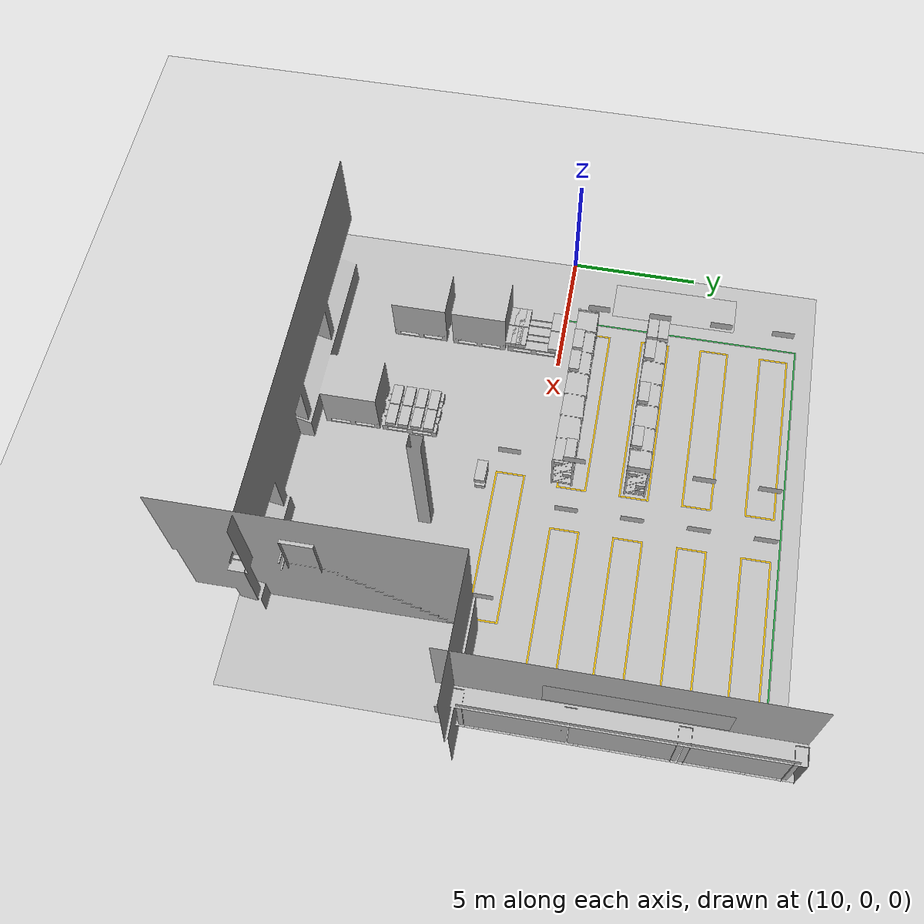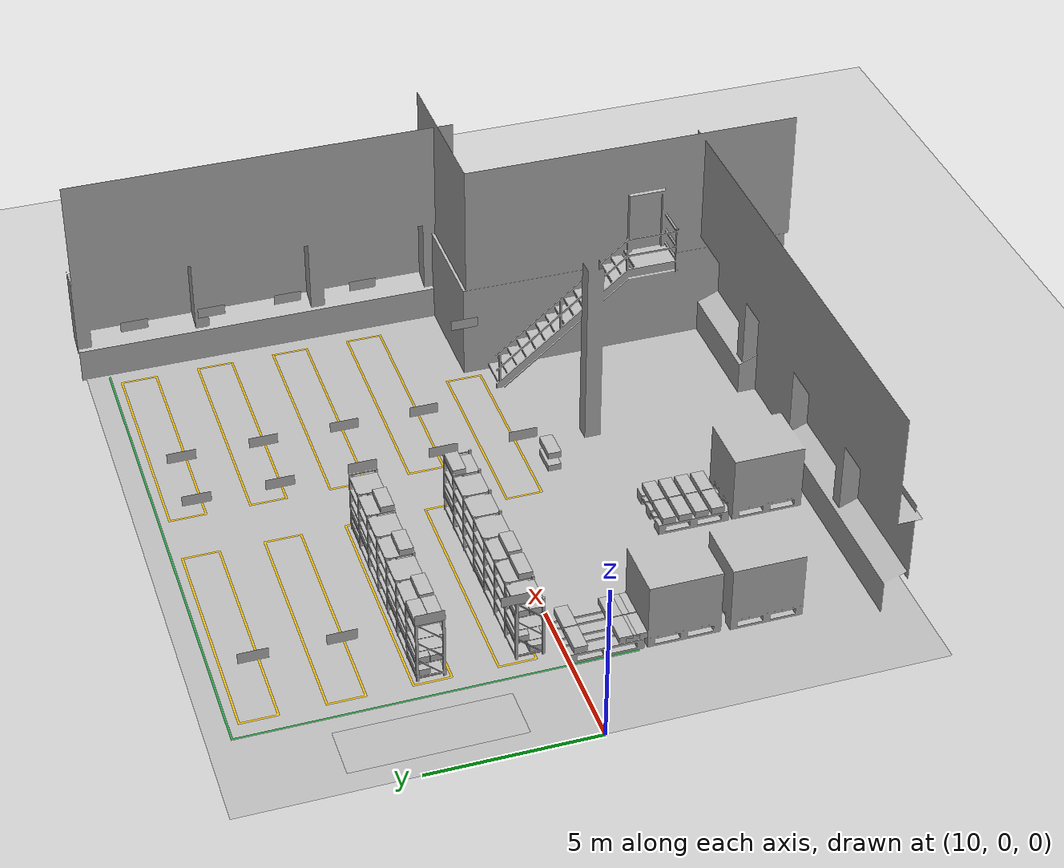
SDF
<sdf version="1.6">
 <world name="default">
  <model name="ground_plane">
   <static>1</static>
   <link name="link">
    <collision name="collision">
     <geometry><plane><normal>0 0 1</normal><size>100 100</size></plane></geometry>
     <surface><friction><ode><mu>100</mu><mu2>50</mu2></ode></friction></surface>
    </collision>
    <visual name="visual">
     <cast_shadows>0</cast_shadows>
     <geometry><plane><normal>0 0 1</normal><size>100 100</size></plane></geometry>
     <material>
      <script><uri>file://media/materials/scripts/gazebo.material</uri><name>Gazebo/Grey</name></script>
     </material>
    </visual>
   </link>
  </model>
  <include>
   <name>zone_B_layout</name>
   <uri>model://zone_b_layout</uri>
   <pose>20.062 0.052292 0 0 0 1.5708</pose>
  </include>
  <model name="box_B_013">
   <pose>20.763 -2.0527 0.652 0 0 1.5708</pose>
   <link name="link">
    <inertial>
     <mass>4.0</mass>
     <inertia><ixx>0.25417</ixx><iyy>0.06667</iyy><izz>0.29417</izz><ixy>0</ixy><ixz>0</ixz><iyz>0</iyz></inertia>
    </inertial>
    <collision name="collision">
     <geometry><box><size>0.4 0.85 0.2</size></box></geometry>
     <surface><friction><ode><mu>1.0</mu><mu2>1.0</mu2></ode></friction></surface>
    </collision>
    <visual name="visual">
     <cast_shadows>0</cast_shadows>
     <geometry><box><size>0.4 0.85 0.2</size></box></geometry>
     <material>
      <script>
       <uri>model://labeled_boxes/materials/scripts</uri>
       <uri>model://labeled_boxes/materials/textures</uri>
       <name>LabeledBox/B-013</name>
      </script>
     </material>
    </visual>
   </link>
  </model>
  <model name="box_B_014">
   <pose>20.763 -2.0527 1.102 0 0 1.5708</pose>
   <link name="link">
    <inertial>
     <mass>4.0</mass>
     <inertia><ixx>0.25417</ixx><iyy>0.06667</iyy><izz>0.29417</izz><ixy>0</ixy><ixz>0</ixz><iyz>0</iyz></inertia>
    </inertial>
    <collision name="collision">
     <geometry><box><size>0.4 0.85 0.2</size></box></geometry>
     <surface><friction><ode><mu>1.0</mu><mu2>1.0</mu2></ode></friction></surface>
    </collision>
    <visual name="visual">
     <cast_shadows>0</cast_shadows>
     <geometry><box><size>0.4 0.85 0.2</size></box></geometry>
     <material>
      <script>
       <uri>model://labeled_boxes/materials/scripts</uri>
       <uri>model://labeled_boxes/materials/textures</uri>
       <name>LabeledBox/B-014</name>
      </script>
     </material>
    </visual>
   </link>
  </model>
  <include>
   <name>rack_B2_1</name>
   <uri>model://warehouse_rack_5lvl_7bay</uri>
   <pose>16.862 0.9523 0 0 0 1.5708</pose>
  </include>
  <model name="box_B_036">
   <pose>19.759 1.1573 0.652 0 0 1.5708</pose>
   <link name="link">
    <inertial>
     <mass>4.0</mass>
     <inertia><ixx>0.25417</ixx><iyy>0.06667</iyy><izz>0.29417</izz><ixy>0</ixy><ixz>0</ixz><iyz>0</iyz></inertia>
    </inertial>
    <collision name="collision">
     <geometry><box><size>0.4 0.85 0.2</size></box></geometry>
     <surface><friction><ode><mu>1.0</mu><mu2>1.0</mu2></ode></friction></surface>
    </collision>
    <visual name="visual">
     <cast_shadows>0</cast_shadows>
     <geometry><box><size>0.4 0.85 0.2</size></box></geometry>
     <material>
      <script>
       <uri>model://labeled_boxes/materials/scripts</uri>
       <uri>model://labeled_boxes/materials/textures</uri>
       <name>LabeledBox/B-036</name>
      </script>
     </material>
    </visual>
   </link>
  </model>
  <model name="box_B_037">
   <pose>19.759 0.7473 1.552 0 0 1.5708</pose>
   <link name="link">
    <inertial>
     <mass>4.0</mass>
     <inertia><ixx>0.25417</ixx><iyy>0.06667</iyy><izz>0.29417</izz><ixy>0</ixy><ixz>0</ixz><iyz>0</iyz></inertia>
    </inertial>
    <collision name="collision">
     <geometry><box><size>0.4 0.85 0.2</size></box></geometry>
     <surface><friction><ode><mu>1.0</mu><mu2>1.0</mu2></ode></friction></surface>
    </collision>
    <visual name="visual">
     <cast_shadows>0</cast_shadows>
     <geometry><box><size>0.4 0.85 0.2</size></box></geometry>
     <material>
      <script>
       <uri>model://labeled_boxes/materials/scripts</uri>
       <uri>model://labeled_boxes/materials/textures</uri>
       <name>LabeledBox/B-037</name>
      </script>
     </material>
    </visual>
   </link>
  </model>
  <model name="box_B_038">
   <pose>19.759 1.1573 2.002 0 0 1.5708</pose>
   <link name="link">
    <inertial>
     <mass>4.0</mass>
     <inertia><ixx>0.25417</ixx><iyy>0.06667</iyy><izz>0.29417</izz><ixy>0</ixy><ixz>0</ixz><iyz>0</iyz></inertia>
    </inertial>
    <collision name="collision">
     <geometry><box><size>0.4 0.85 0.2</size></box></geometry>
     <surface><friction><ode><mu>1.0</mu><mu2>1.0</mu2></ode></friction></surface>
    </collision>
    <visual name="visual">
     <cast_shadows>0</cast_shadows>
     <geometry><box><size>0.4 0.85 0.2</size></box></geometry>
     <material>
      <script>
       <uri>model://labeled_boxes/materials/scripts</uri>
       <uri>model://labeled_boxes/materials/textures</uri>
       <name>LabeledBox/B-038</name>
      </script>
     </material>
    </visual>
   </link>
  </model>
  <model name="box_B_039">
   <pose>18.805 0.7473 0.202 0 0 1.5708</pose>
   <link name="link">
    <inertial>
     <mass>4.0</mass>
     <inertia><ixx>0.25417</ixx><iyy>0.06667</iyy><izz>0.29417</izz><ixy>0</ixy><ixz>0</ixz><iyz>0</iyz></inertia>
    </inertial>
    <collision name="collision">
     <geometry><box><size>0.4 0.85 0.2</size></box></geometry>
     <surface><friction><ode><mu>1.0</mu><mu2>1.0</mu2></ode></friction></surface>
    </collision>
    <visual name="visual">
     <cast_shadows>0</cast_shadows>
     <geometry><box><size>0.4 0.85 0.2</size></box></geometry>
     <material>
      <script>
       <uri>model://labeled_boxes/materials/scripts</uri>
       <uri>model://labeled_boxes/materials/textures</uri>
       <name>LabeledBox/B-039</name>
      </script>
     </material>
    </visual>
   </link>
  </model>
  <model name="box_B_040">
   <pose>16.862 1.1573 0.202 0 0 1.5708</pose>
   <link name="link">
    <inertial>
     <mass>4.0</mass>
     <inertia><ixx>0.25417</ixx><iyy>0.06667</iyy><izz>0.29417</izz><ixy>0</ixy><ixz>0</ixz><iyz>0</iyz></inertia>
    </inertial>
    <collision name="collision">
     <geometry><box><size>0.4 0.85 0.2</size></box></geometry>
     <surface><friction><ode><mu>1.0</mu><mu2>1.0</mu2></ode></friction></surface>
    </collision>
    <visual name="visual">
     <cast_shadows>0</cast_shadows>
     <geometry><box><size>0.4 0.85 0.2</size></box></geometry>
     <material>
      <script>
       <uri>model://labeled_boxes/materials/scripts</uri>
       <uri>model://labeled_boxes/materials/textures</uri>
       <name>LabeledBox/B-040</name>
      </script>
     </material>
    </visual>
   </link>
  </model>
  <model name="box_B_041">
   <pose>16.862 0.7473 1.102 0 0 1.5708</pose>
   <link name="link">
    <inertial>
     <mass>4.0</mass>
     <inertia><ixx>0.25417</ixx><iyy>0.06667</iyy><izz>0.29417</izz><ixy>0</ixy><ixz>0</ixz><iyz>0</iyz></inertia>
    </inertial>
    <collision name="collision">
     <geometry><box><size>0.4 0.85 0.2</size></box></geometry>
     <surface><friction><ode><mu>1.0</mu><mu2>1.0</mu2></ode></friction></surface>
    </collision>
    <visual name="visual">
     <cast_shadows>0</cast_shadows>
     <geometry><box><size>0.4 0.85 0.2</size></box></geometry>
     <material>
      <script>
       <uri>model://labeled_boxes/materials/scripts</uri>
       <uri>model://labeled_boxes/materials/textures</uri>
       <name>LabeledBox/B-041</name>
      </script>
     </material>
    </visual>
   </link>
  </model>
  <model name="box_B_042">
   <pose>15.891 0.7473 2.002 0 0 1.5708</pose>
   <link name="link">
    <inertial>
     <mass>4.0</mass>
     <inertia><ixx>0.25417</ixx><iyy>0.06667</iyy><izz>0.29417</izz><ixy>0</ixy><ixz>0</ixz><iyz>0</iyz></inertia>
    </inertial>
    <collision name="collision">
     <geometry><box><size>0.4 0.85 0.2</size></box></geometry>
     <surface><friction><ode><mu>1.0</mu><mu2>1.0</mu2></ode></friction></surface>
    </collision>
    <visual name="visual">
     <cast_shadows>0</cast_shadows>
     <geometry><box><size>0.4 0.85 0.2</size></box></geometry>
     <material>
      <script>
       <uri>model://labeled_boxes/materials/scripts</uri>
       <uri>model://labeled_boxes/materials/textures</uri>
       <name>LabeledBox/B-042</name>
      </script>
     </material>
    </visual>
   </link>
  </model>
  <model name="box_B_043">
   <pose>14.92 0.7473 0.202 0 0 1.5708</pose>
   <link name="link">
    <inertial>
     <mass>4.0</mass>
     <inertia><ixx>0.25417</ixx><iyy>0.06667</iyy><izz>0.29417</izz><ixy>0</ixy><ixz>0</ixz><iyz>0</iyz></inertia>
    </inertial>
    <collision name="collision">
     <geometry><box><size>0.4 0.85 0.2</size></box></geometry>
     <surface><friction><ode><mu>1.0</mu><mu2>1.0</mu2></ode></friction></surface>
    </collision>
    <visual name="visual">
     <cast_shadows>0</cast_shadows>
     <geometry><box><size>0.4 0.85 0.2</size></box></geometry>
     <material>
      <script>
       <uri>model://labeled_boxes/materials/scripts</uri>
       <uri>model://labeled_boxes/materials/textures</uri>
       <name>LabeledBox/B-043</name>
      </script>
     </material>
    </visual>
   </link>
  </model>
  <model name="box_B_044">
   <pose>14.92 0.7473 1.102 0 0 1.5708</pose>
   <link name="link">
    <inertial>
     <mass>4.0</mass>
     <inertia><ixx>0.25417</ixx><iyy>0.06667</iyy><izz>0.29417</izz><ixy>0</ixy><ixz>0</ixz><iyz>0</iyz></inertia>
    </inertial>
    <collision name="collision">
     <geometry><box><size>0.4 0.85 0.2</size></box></geometry>
     <surface><friction><ode><mu>1.0</mu><mu2>1.0</mu2></ode></friction></surface>
    </collision>
    <visual name="visual">
     <cast_shadows>0</cast_shadows>
     <geometry><box><size>0.4 0.85 0.2</size></box></geometry>
     <material>
      <script>
       <uri>model://labeled_boxes/materials/scripts</uri>
       <uri>model://labeled_boxes/materials/textures</uri>
       <name>LabeledBox/B-044</name>
      </script>
     </material>
    </visual>
   </link>
  </model>
  <model name="box_B_045">
   <pose>14.92 0.7473 2.002 0 0 1.5708</pose>
   <link name="link">
    <inertial>
     <mass>4.0</mass>
     <inertia><ixx>0.25417</ixx><iyy>0.06667</iyy><izz>0.29417</izz><ixy>0</ixy><ixz>0</ixz><iyz>0</iyz></inertia>
    </inertial>
    <collision name="collision">
     <geometry><box><size>0.4 0.85 0.2</size></box></geometry>
     <surface><friction><ode><mu>1.0</mu><mu2>1.0</mu2></ode></friction></surface>
    </collision>
    <visual name="visual">
     <cast_shadows>0</cast_shadows>
     <geometry><box><size>0.4 0.85 0.2</size></box></geometry>
     <material>
      <script>
       <uri>model://labeled_boxes/materials/scripts</uri>
       <uri>model://labeled_boxes/materials/textures</uri>
       <name>LabeledBox/B-045</name>
      </script>
     </material>
    </visual>
   </link>
  </model>
  <model name="box_B_046">
   <pose>13.966 0.7473 0.202 0 0 1.5708</pose>
   <link name="link">
    <inertial>
     <mass>4.0</mass>
     <inertia><ixx>0.25417</ixx><iyy>0.06667</iyy><izz>0.29417</izz><ixy>0</ixy><ixz>0</ixz><iyz>0</iyz></inertia>
    </inertial>
    <collision name="collision">
     <geometry><box><size>0.4 0.85 0.2</size></box></geometry>
     <surface><friction><ode><mu>1.0</mu><mu2>1.0</mu2></ode></friction></surface>
    </collision>
    <visual name="visual">
     <cast_shadows>0</cast_shadows>
     <geometry><box><size>0.4 0.85 0.2</size></box></geometry>
     <material>
      <script>
       <uri>model://labeled_boxes/materials/scripts</uri>
       <uri>model://labeled_boxes/materials/textures</uri>
       <name>LabeledBox/B-046</name>
      </script>
     </material>
    </visual>
   </link>
  </model>
  <model name="box_B_047">
   <pose>13.966 1.1573 0.652 0 0 1.5708</pose>
   <link name="link">
    <inertial>
     <mass>4.0</mass>
     <inertia><ixx>0.25417</ixx><iyy>0.06667</iyy><izz>0.29417</izz><ixy>0</ixy><ixz>0</ixz><iyz>0</iyz></inertia>
    </inertial>
    <collision name="collision">
     <geometry><box><size>0.4 0.85 0.2</size></box></geometry>
     <surface><friction><ode><mu>1.0</mu><mu2>1.0</mu2></ode></friction></surface>
    </collision>
    <visual name="visual">
     <cast_shadows>0</cast_shadows>
     <geometry><box><size>0.4 0.85 0.2</size></box></geometry>
     <material>
      <script>
       <uri>model://labeled_boxes/materials/scripts</uri>
       <uri>model://labeled_boxes/materials/textures</uri>
       <name>LabeledBox/B-047</name>
      </script>
     </material>
    </visual>
   </link>
  </model>
  <model name="box_B_048">
   <pose>13.966 0.7473 1.552 0 0 1.5708</pose>
   <link name="link">
    <inertial>
     <mass>4.0</mass>
     <inertia><ixx>0.25417</ixx><iyy>0.06667</iyy><izz>0.29417</izz><ixy>0</ixy><ixz>0</ixz><iyz>0</iyz></inertia>
    </inertial>
    <collision name="collision">
     <geometry><box><size>0.4 0.85 0.2</size></box></geometry>
     <surface><friction><ode><mu>1.0</mu><mu2>1.0</mu2></ode></friction></surface>
    </collision>
    <visual name="visual">
     <cast_shadows>0</cast_shadows>
     <geometry><box><size>0.4 0.85 0.2</size></box></geometry>
     <material>
      <script>
       <uri>model://labeled_boxes/materials/scripts</uri>
       <uri>model://labeled_boxes/materials/textures</uri>
       <name>LabeledBox/B-048</name>
      </script>
     </material>
    </visual>
   </link>
  </model>
  <model name="box_B_049">
   <pose>13.966 1.1573 1.552 0 0 1.5708</pose>
   <link name="link">
    <inertial>
     <mass>4.0</mass>
     <inertia><ixx>0.25417</ixx><iyy>0.06667</iyy><izz>0.29417</izz><ixy>0</ixy><ixz>0</ixz><iyz>0</iyz></inertia>
    </inertial>
    <collision name="collision">
     <geometry><box><size>0.4 0.85 0.2</size></box></geometry>
     <surface><friction><ode><mu>1.0</mu><mu2>1.0</mu2></ode></friction></surface>
    </collision>
    <visual name="visual">
     <cast_shadows>0</cast_shadows>
     <geometry><box><size>0.4 0.85 0.2</size></box></geometry>
     <material>
      <script>
       <uri>model://labeled_boxes/materials/scripts</uri>
       <uri>model://labeled_boxes/materials/textures</uri>
       <name>LabeledBox/B-049</name>
      </script>
     </material>
    </visual>
   </link>
  </model>
  <include>
   <name>rack_B3_1</name>
   <uri>model://warehouse_rack_5lvl_7bay</uri>
   <pose>16.862 3.7523 0 0 0 1.5708</pose>
  </include>
  <model name="box_B_068">
   <pose>19.759 3.9573 0.202 0 0 1.5708</pose>
   <link name="link">
    <inertial>
     <mass>4.0</mass>
     <inertia><ixx>0.25417</ixx><iyy>0.06667</iyy><izz>0.29417</izz><ixy>0</ixy><ixz>0</ixz><iyz>0</iyz></inertia>
    </inertial>
    <collision name="collision">
     <geometry><box><size>0.4 0.85 0.2</size></box></geometry>
     <surface><friction><ode><mu>1.0</mu><mu2>1.0</mu2></ode></friction></surface>
    </collision>
    <visual name="visual">
     <cast_shadows>0</cast_shadows>
     <geometry><box><size>0.4 0.85 0.2</size></box></geometry>
     <material>
      <script>
       <uri>model://labeled_boxes/materials/scripts</uri>
       <uri>model://labeled_boxes/materials/textures</uri>
       <name>LabeledBox/B-068</name>
      </script>
     </material>
    </visual>
   </link>
  </model>
  <model name="box_B_069">
   <pose>19.759 3.9573 0.652 0 0 1.5708</pose>
   <link name="link">
    <inertial>
     <mass>4.0</mass>
     <inertia><ixx>0.25417</ixx><iyy>0.06667</iyy><izz>0.29417</izz><ixy>0</ixy><ixz>0</ixz><iyz>0</iyz></inertia>
    </inertial>
    <collision name="collision">
     <geometry><box><size>0.4 0.85 0.2</size></box></geometry>
     <surface><friction><ode><mu>1.0</mu><mu2>1.0</mu2></ode></friction></surface>
    </collision>
    <visual name="visual">
     <cast_shadows>0</cast_shadows>
     <geometry><box><size>0.4 0.85 0.2</size></box></geometry>
     <material>
      <script>
       <uri>model://labeled_boxes/materials/scripts</uri>
       <uri>model://labeled_boxes/materials/textures</uri>
       <name>LabeledBox/B-069</name>
      </script>
     </material>
    </visual>
   </link>
  </model>
  <model name="box_B_070">
   <pose>19.759 3.5473 1.552 0 0 1.5708</pose>
   <link name="link">
    <inertial>
     <mass>4.0</mass>
     <inertia><ixx>0.25417</ixx><iyy>0.06667</iyy><izz>0.29417</izz><ixy>0</ixy><ixz>0</ixz><iyz>0</iyz></inertia>
    </inertial>
    <collision name="collision">
     <geometry><box><size>0.4 0.85 0.2</size></box></geometry>
     <surface><friction><ode><mu>1.0</mu><mu2>1.0</mu2></ode></friction></surface>
    </collision>
    <visual name="visual">
     <cast_shadows>0</cast_shadows>
     <geometry><box><size>0.4 0.85 0.2</size></box></geometry>
     <material>
      <script>
       <uri>model://labeled_boxes/materials/scripts</uri>
       <uri>model://labeled_boxes/materials/textures</uri>
       <name>LabeledBox/B-070</name>
      </script>
     </material>
    </visual>
   </link>
  </model>
  <model name="box_B_071">
   <pose>18.805 3.5473 0.652 0 0 1.5708</pose>
   <link name="link">
    <inertial>
     <mass>4.0</mass>
     <inertia><ixx>0.25417</ixx><iyy>0.06667</iyy><izz>0.29417</izz><ixy>0</ixy><ixz>0</ixz><iyz>0</iyz></inertia>
    </inertial>
    <collision name="collision">
     <geometry><box><size>0.4 0.85 0.2</size></box></geometry>
     <surface><friction><ode><mu>1.0</mu><mu2>1.0</mu2></ode></friction></surface>
    </collision>
    <visual name="visual">
     <cast_shadows>0</cast_shadows>
     <geometry><box><size>0.4 0.85 0.2</size></box></geometry>
     <material>
      <script>
       <uri>model://labeled_boxes/materials/scripts</uri>
       <uri>model://labeled_boxes/materials/textures</uri>
       <name>LabeledBox/B-071</name>
      </script>
     </material>
    </visual>
   </link>
  </model>
  <model name="box_B_072">
   <pose>18.805 3.9573 0.652 0 0 1.5708</pose>
   <link name="link">
    <inertial>
     <mass>4.0</mass>
     <inertia><ixx>0.25417</ixx><iyy>0.06667</iyy><izz>0.29417</izz><ixy>0</ixy><ixz>0</ixz><iyz>0</iyz></inertia>
    </inertial>
    <collision name="collision">
     <geometry><box><size>0.4 0.85 0.2</size></box></geometry>
     <surface><friction><ode><mu>1.0</mu><mu2>1.0</mu2></ode></friction></surface>
    </collision>
    <visual name="visual">
     <cast_shadows>0</cast_shadows>
     <geometry><box><size>0.4 0.85 0.2</size></box></geometry>
     <material>
      <script>
       <uri>model://labeled_boxes/materials/scripts</uri>
       <uri>model://labeled_boxes/materials/textures</uri>
       <name>LabeledBox/B-072</name>
      </script>
     </material>
    </visual>
   </link>
  </model>
  <model name="box_B_073">
   <pose>18.805 3.5473 1.552 0 0 1.5708</pose>
   <link name="link">
    <inertial>
     <mass>4.0</mass>
     <inertia><ixx>0.25417</ixx><iyy>0.06667</iyy><izz>0.29417</izz><ixy>0</ixy><ixz>0</ixz><iyz>0</iyz></inertia>
    </inertial>
    <collision name="collision">
     <geometry><box><size>0.4 0.85 0.2</size></box></geometry>
     <surface><friction><ode><mu>1.0</mu><mu2>1.0</mu2></ode></friction></surface>
    </collision>
    <visual name="visual">
     <cast_shadows>0</cast_shadows>
     <geometry><box><size>0.4 0.85 0.2</size></box></geometry>
     <material>
      <script>
       <uri>model://labeled_boxes/materials/scripts</uri>
       <uri>model://labeled_boxes/materials/textures</uri>
       <name>LabeledBox/B-073</name>
      </script>
     </material>
    </visual>
   </link>
  </model>
  <model name="box_B_074">
   <pose>18.805 3.5473 2.002 0 0 1.5708</pose>
   <link name="link">
    <inertial>
     <mass>4.0</mass>
     <inertia><ixx>0.25417</ixx><iyy>0.06667</iyy><izz>0.29417</izz><ixy>0</ixy><ixz>0</ixz><iyz>0</iyz></inertia>
    </inertial>
    <collision name="collision">
     <geometry><box><size>0.4 0.85 0.2</size></box></geometry>
     <surface><friction><ode><mu>1.0</mu><mu2>1.0</mu2></ode></friction></surface>
    </collision>
    <visual name="visual">
     <cast_shadows>0</cast_shadows>
     <geometry><box><size>0.4 0.85 0.2</size></box></geometry>
     <material>
      <script>
       <uri>model://labeled_boxes/materials/scripts</uri>
       <uri>model://labeled_boxes/materials/textures</uri>
       <name>LabeledBox/B-074</name>
      </script>
     </material>
    </visual>
   </link>
  </model>
  <model name="box_B_075">
   <pose>17.834 3.5473 0.202 0 0 1.5708</pose>
   <link name="link">
    <inertial>
     <mass>4.0</mass>
     <inertia><ixx>0.25417</ixx><iyy>0.06667</iyy><izz>0.29417</izz><ixy>0</ixy><ixz>0</ixz><iyz>0</iyz></inertia>
    </inertial>
    <collision name="collision">
     <geometry><box><size>0.4 0.85 0.2</size></box></geometry>
     <surface><friction><ode><mu>1.0</mu><mu2>1.0</mu2></ode></friction></surface>
    </collision>
    <visual name="visual">
     <cast_shadows>0</cast_shadows>
     <geometry><box><size>0.4 0.85 0.2</size></box></geometry>
     <material>
      <script>
       <uri>model://labeled_boxes/materials/scripts</uri>
       <uri>model://labeled_boxes/materials/textures</uri>
       <name>LabeledBox/B-075</name>
      </script>
     </material>
    </visual>
   </link>
  </model>
  <model name="box_B_076">
   <pose>16.862 3.5473 1.552 0 0 1.5708</pose>
   <link name="link">
    <inertial>
     <mass>4.0</mass>
     <inertia><ixx>0.25417</ixx><iyy>0.06667</iyy><izz>0.29417</izz><ixy>0</ixy><ixz>0</ixz><iyz>0</iyz></inertia>
    </inertial>
    <collision name="collision">
     <geometry><box><size>0.4 0.85 0.2</size></box></geometry>
     <surface><friction><ode><mu>1.0</mu><mu2>1.0</mu2></ode></friction></surface>
    </collision>
    <visual name="visual">
     <cast_shadows>0</cast_shadows>
     <geometry><box><size>0.4 0.85 0.2</size></box></geometry>
     <material>
      <script>
       <uri>model://labeled_boxes/materials/scripts</uri>
       <uri>model://labeled_boxes/materials/textures</uri>
       <name>LabeledBox/B-076</name>
      </script>
     </material>
    </visual>
   </link>
  </model>
  <model name="box_B_077">
   <pose>16.862 3.5473 2.002 0 0 1.5708</pose>
   <link name="link">
    <inertial>
     <mass>4.0</mass>
     <inertia><ixx>0.25417</ixx><iyy>0.06667</iyy><izz>0.29417</izz><ixy>0</ixy><ixz>0</ixz><iyz>0</iyz></inertia>
    </inertial>
    <collision name="collision">
     <geometry><box><size>0.4 0.85 0.2</size></box></geometry>
     <surface><friction><ode><mu>1.0</mu><mu2>1.0</mu2></ode></friction></surface>
    </collision>
    <visual name="visual">
     <cast_shadows>0</cast_shadows>
     <geometry><box><size>0.4 0.85 0.2</size></box></geometry>
     <material>
      <script>
       <uri>model://labeled_boxes/materials/scripts</uri>
       <uri>model://labeled_boxes/materials/textures</uri>
       <name>LabeledBox/B-077</name>
      </script>
     </material>
    </visual>
   </link>
  </model>
  <model name="box_B_078">
   <pose>15.891 3.9573 0.652 0 0 1.5708</pose>
   <link name="link">
    <inertial>
     <mass>4.0</mass>
     <inertia><ixx>0.25417</ixx><iyy>0.06667</iyy><izz>0.29417</izz><ixy>0</ixy><ixz>0</ixz><iyz>0</iyz></inertia>
    </inertial>
    <collision name="collision">
     <geometry><box><size>0.4 0.85 0.2</size></box></geometry>
     <surface><friction><ode><mu>1.0</mu><mu2>1.0</mu2></ode></friction></surface>
    </collision>
    <visual name="visual">
     <cast_shadows>0</cast_shadows>
     <geometry><box><size>0.4 0.85 0.2</size></box></geometry>
     <material>
      <script>
       <uri>model://labeled_boxes/materials/scripts</uri>
       <uri>model://labeled_boxes/materials/textures</uri>
       <name>LabeledBox/B-078</name>
      </script>
     </material>
    </visual>
   </link>
  </model>
  <model name="box_B_079">
   <pose>14.92 3.5473 0.202 0 0 1.5708</pose>
   <link name="link">
    <inertial>
     <mass>4.0</mass>
     <inertia><ixx>0.25417</ixx><iyy>0.06667</iyy><izz>0.29417</izz><ixy>0</ixy><ixz>0</ixz><iyz>0</iyz></inertia>
    </inertial>
    <collision name="collision">
     <geometry><box><size>0.4 0.85 0.2</size></box></geometry>
     <surface><friction><ode><mu>1.0</mu><mu2>1.0</mu2></ode></friction></surface>
    </collision>
    <visual name="visual">
     <cast_shadows>0</cast_shadows>
     <geometry><box><size>0.4 0.85 0.2</size></box></geometry>
     <material>
      <script>
       <uri>model://labeled_boxes/materials/scripts</uri>
       <uri>model://labeled_boxes/materials/textures</uri>
       <name>LabeledBox/B-079</name>
      </script>
     </material>
    </visual>
   </link>
  </model>
  <model name="box_B_080">
   <pose>14.92 3.9573 0.652 0 0 1.5708</pose>
   <link name="link">
    <inertial>
     <mass>4.0</mass>
     <inertia><ixx>0.25417</ixx><iyy>0.06667</iyy><izz>0.29417</izz><ixy>0</ixy><ixz>0</ixz><iyz>0</iyz></inertia>
    </inertial>
    <collision name="collision">
     <geometry><box><size>0.4 0.85 0.2</size></box></geometry>
     <surface><friction><ode><mu>1.0</mu><mu2>1.0</mu2></ode></friction></surface>
    </collision>
    <visual name="visual">
     <cast_shadows>0</cast_shadows>
     <geometry><box><size>0.4 0.85 0.2</size></box></geometry>
     <material>
      <script>
       <uri>model://labeled_boxes/materials/scripts</uri>
       <uri>model://labeled_boxes/materials/textures</uri>
       <name>LabeledBox/B-080</name>
      </script>
     </material>
    </visual>
   </link>
  </model>
  <model name="box_B_081">
   <pose>14.92 3.5473 2.002 0 0 1.5708</pose>
   <link name="link">
    <inertial>
     <mass>4.0</mass>
     <inertia><ixx>0.25417</ixx><iyy>0.06667</iyy><izz>0.29417</izz><ixy>0</ixy><ixz>0</ixz><iyz>0</iyz></inertia>
    </inertial>
    <collision name="collision">
     <geometry><box><size>0.4 0.85 0.2</size></box></geometry>
     <surface><friction><ode><mu>1.0</mu><mu2>1.0</mu2></ode></friction></surface>
    </collision>
    <visual name="visual">
     <cast_shadows>0</cast_shadows>
     <geometry><box><size>0.4 0.85 0.2</size></box></geometry>
     <material>
      <script>
       <uri>model://labeled_boxes/materials/scripts</uri>
       <uri>model://labeled_boxes/materials/textures</uri>
       <name>LabeledBox/B-081</name>
      </script>
     </material>
    </visual>
   </link>
  </model>
  <model name="box_B_082">
   <pose>13.966 3.9573 0.202 0 0 1.5708</pose>
   <link name="link">
    <inertial>
     <mass>4.0</mass>
     <inertia><ixx>0.25417</ixx><iyy>0.06667</iyy><izz>0.29417</izz><ixy>0</ixy><ixz>0</ixz><iyz>0</iyz></inertia>
    </inertial>
    <collision name="collision">
     <geometry><box><size>0.4 0.85 0.2</size></box></geometry>
     <surface><friction><ode><mu>1.0</mu><mu2>1.0</mu2></ode></friction></surface>
    </collision>
    <visual name="visual">
     <cast_shadows>0</cast_shadows>
     <geometry><box><size>0.4 0.85 0.2</size></box></geometry>
     <material>
      <script>
       <uri>model://labeled_boxes/materials/scripts</uri>
       <uri>model://labeled_boxes/materials/textures</uri>
       <name>LabeledBox/B-082</name>
      </script>
     </material>
    </visual>
   </link>
  </model>
  <model name="box_B_083">
   <pose>13.966 3.5473 0.652 0 0 1.5708</pose>
   <link name="link">
    <inertial>
     <mass>4.0</mass>
     <inertia><ixx>0.25417</ixx><iyy>0.06667</iyy><izz>0.29417</izz><ixy>0</ixy><ixz>0</ixz><iyz>0</iyz></inertia>
    </inertial>
    <collision name="collision">
     <geometry><box><size>0.4 0.85 0.2</size></box></geometry>
     <surface><friction><ode><mu>1.0</mu><mu2>1.0</mu2></ode></friction></surface>
    </collision>
    <visual name="visual">
     <cast_shadows>0</cast_shadows>
     <geometry><box><size>0.4 0.85 0.2</size></box></geometry>
     <material>
      <script>
       <uri>model://labeled_boxes/materials/scripts</uri>
       <uri>model://labeled_boxes/materials/textures</uri>
       <name>LabeledBox/B-083</name>
      </script>
     </material>
    </visual>
   </link>
  </model>
  <model name="box_B_084">
   <pose>13.966 3.9573 0.652 0 0 1.5708</pose>
   <link name="link">
    <inertial>
     <mass>4.0</mass>
     <inertia><ixx>0.25417</ixx><iyy>0.06667</iyy><izz>0.29417</izz><ixy>0</ixy><ixz>0</ixz><iyz>0</iyz></inertia>
    </inertial>
    <collision name="collision">
     <geometry><box><size>0.4 0.85 0.2</size></box></geometry>
     <surface><friction><ode><mu>1.0</mu><mu2>1.0</mu2></ode></friction></surface>
    </collision>
    <visual name="visual">
     <cast_shadows>0</cast_shadows>
     <geometry><box><size>0.4 0.85 0.2</size></box></geometry>
     <material>
      <script>
       <uri>model://labeled_boxes/materials/scripts</uri>
       <uri>model://labeled_boxes/materials/textures</uri>
       <name>LabeledBox/B-084</name>
      </script>
     </material>
    </visual>
   </link>
  </model>
  <model name="box_B_085">
   <pose>13.966 3.5473 2.002 0 0 1.5708</pose>
   <link name="link">
    <inertial>
     <mass>4.0</mass>
     <inertia><ixx>0.25417</ixx><iyy>0.06667</iyy><izz>0.29417</izz><ixy>0</ixy><ixz>0</ixz><iyz>0</iyz></inertia>
    </inertial>
    <collision name="collision">
     <geometry><box><size>0.4 0.85 0.2</size></box></geometry>
     <surface><friction><ode><mu>1.0</mu><mu2>1.0</mu2></ode></friction></surface>
    </collision>
    <visual name="visual">
     <cast_shadows>0</cast_shadows>
     <geometry><box><size>0.4 0.85 0.2</size></box></geometry>
     <material>
      <script>
       <uri>model://labeled_boxes/materials/scripts</uri>
       <uri>model://labeled_boxes/materials/textures</uri>
       <name>LabeledBox/B-085</name>
      </script>
     </material>
    </visual>
   </link>
  </model>
  <model name="box_B_086">
   <pose>13.966 3.9573 2.002 0 0 1.5708</pose>
   <link name="link">
    <inertial>
     <mass>4.0</mass>
     <inertia><ixx>0.25417</ixx><iyy>0.06667</iyy><izz>0.29417</izz><ixy>0</ixy><ixz>0</ixz><iyz>0</iyz></inertia>
    </inertial>
    <collision name="collision">
     <geometry><box><size>0.4 0.85 0.2</size></box></geometry>
     <surface><friction><ode><mu>1.0</mu><mu2>1.0</mu2></ode></friction></surface>
    </collision>
    <visual name="visual">
     <cast_shadows>0</cast_shadows>
     <geometry><box><size>0.4 0.85 0.2</size></box></geometry>
     <material>
      <script>
       <uri>model://labeled_boxes/materials/scripts</uri>
       <uri>model://labeled_boxes/materials/textures</uri>
       <name>LabeledBox/B-086</name>
      </script>
     </material>
    </visual>
   </link>
  </model>
  <model name="box_B_151">
   <pose>14.184 -1.7958 0.4292 0 0 1.5708</pose>
   <link name="link">
    <inertial>
     <mass>4.0</mass>
     <inertia><ixx>0.25417</ixx><iyy>0.06667</iyy><izz>0.29417</izz><ixy>0</ixy><ixz>0</ixz><iyz>0</iyz></inertia>
    </inertial>
    <collision name="collision">
     <geometry><box><size>0.4 0.85 0.2</size></box></geometry>
     <surface><friction><ode><mu>1.0</mu><mu2>1.0</mu2></ode></friction></surface>
    </collision>
    <visual name="visual">
     <cast_shadows>0</cast_shadows>
     <geometry><box><size>0.4 0.85 0.2</size></box></geometry>
     <material>
      <script>
       <uri>model://labeled_boxes/materials/scripts</uri>
       <uri>model://labeled_boxes/materials/textures</uri>
       <name>LabeledBox/B-151</name>
      </script>
     </material>
    </visual>
   </link>
  </model>
  <model name="box_B_152">
   <pose>13.304 -1.7958 0.4292 0 0 1.5708</pose>
   <link name="link">
    <inertial>
     <mass>4.0</mass>
     <inertia><ixx>0.25417</ixx><iyy>0.06667</iyy><izz>0.29417</izz><ixy>0</ixy><ixz>0</ixz><iyz>0</iyz></inertia>
    </inertial>
    <collision name="collision">
     <geometry><box><size>0.4 0.85 0.2</size></box></geometry>
     <surface><friction><ode><mu>1.0</mu><mu2>1.0</mu2></ode></friction></surface>
    </collision>
    <visual name="visual">
     <cast_shadows>0</cast_shadows>
     <geometry><box><size>0.4 0.85 0.2</size></box></geometry>
     <material>
      <script>
       <uri>model://labeled_boxes/materials/scripts</uri>
       <uri>model://labeled_boxes/materials/textures</uri>
       <name>LabeledBox/B-152</name>
      </script>
     </material>
    </visual>
   </link>
  </model>
  <model name="box_B_153">
   <pose>14.184 -2.0958 0.4292 0 0 1.5708</pose>
   <link name="link">
    <inertial>
     <mass>4.0</mass>
     <inertia><ixx>0.25417</ixx><iyy>0.06667</iyy><izz>0.29417</izz><ixy>0</ixy><ixz>0</ixz><iyz>0</iyz></inertia>
    </inertial>
    <collision name="collision">
     <geometry><box><size>0.4 0.85 0.2</size></box></geometry>
     <surface><friction><ode><mu>1.0</mu><mu2>1.0</mu2></ode></friction></surface>
    </collision>
    <visual name="visual">
     <cast_shadows>0</cast_shadows>
     <geometry><box><size>0.4 0.85 0.2</size></box></geometry>
     <material>
      <script>
       <uri>model://labeled_boxes/materials/scripts</uri>
       <uri>model://labeled_boxes/materials/textures</uri>
       <name>LabeledBox/B-153</name>
      </script>
     </material>
    </visual>
   </link>
  </model>
  <model name="box_B_154">
   <pose>13.304 -2.0958 0.4292 0 0 1.5708</pose>
   <link name="link">
    <inertial>
     <mass>4.0</mass>
     <inertia><ixx>0.25417</ixx><iyy>0.06667</iyy><izz>0.29417</izz><ixy>0</ixy><ixz>0</ixz><iyz>0</iyz></inertia>
    </inertial>
    <collision name="collision">
     <geometry><box><size>0.4 0.85 0.2</size></box></geometry>
     <surface><friction><ode><mu>1.0</mu><mu2>1.0</mu2></ode></friction></surface>
    </collision>
    <visual name="visual">
     <cast_shadows>0</cast_shadows>
     <geometry><box><size>0.4 0.85 0.2</size></box></geometry>
     <material>
      <script>
       <uri>model://labeled_boxes/materials/scripts</uri>
       <uri>model://labeled_boxes/materials/textures</uri>
       <name>LabeledBox/B-154</name>
      </script>
     </material>
    </visual>
   </link>
  </model>
  <model name="box_B_155">
   <pose>14.184 -1.5958 0.4292 0 0 1.5708</pose>
   <link name="link">
    <inertial>
     <mass>4.0</mass>
     <inertia><ixx>0.25417</ixx><iyy>0.06667</iyy><izz>0.29417</izz><ixy>0</ixy><ixz>0</ixz><iyz>0</iyz></inertia>
    </inertial>
    <collision name="collision">
     <geometry><box><size>0.4 0.85 0.2</size></box></geometry>
     <surface><friction><ode><mu>1.0</mu><mu2>1.0</mu2></ode></friction></surface>
    </collision>
    <visual name="visual">
     <cast_shadows>0</cast_shadows>
     <geometry><box><size>0.4 0.85 0.2</size></box></geometry>
     <material>
      <script>
       <uri>model://labeled_boxes/materials/scripts</uri>
       <uri>model://labeled_boxes/materials/textures</uri>
       <name>LabeledBox/B-155</name>
      </script>
     </material>
    </visual>
   </link>
  </model>
  <model name="box_B_156">
   <pose>13.304 -1.5958 0.4292 0 0 1.5708</pose>
   <link name="link">
    <inertial>
     <mass>4.0</mass>
     <inertia><ixx>0.25417</ixx><iyy>0.06667</iyy><izz>0.29417</izz><ixy>0</ixy><ixz>0</ixz><iyz>0</iyz></inertia>
    </inertial>
    <collision name="collision">
     <geometry><box><size>0.4 0.85 0.2</size></box></geometry>
     <surface><friction><ode><mu>1.0</mu><mu2>1.0</mu2></ode></friction></surface>
    </collision>
    <visual name="visual">
     <cast_shadows>0</cast_shadows>
     <geometry><box><size>0.4 0.85 0.2</size></box></geometry>
     <material>
      <script>
       <uri>model://labeled_boxes/materials/scripts</uri>
       <uri>model://labeled_boxes/materials/textures</uri>
       <name>LabeledBox/B-156</name>
      </script>
     </material>
    </visual>
   </link>
  </model>
  <model name="box_B_157">
   <pose>14.184 -0.29577 0.4292 0 0 1.5708</pose>
   <link name="link">
    <inertial>
     <mass>4.0</mass>
     <inertia><ixx>0.25417</ixx><iyy>0.06667</iyy><izz>0.29417</izz><ixy>0</ixy><ixz>0</ixz><iyz>0</iyz></inertia>
    </inertial>
    <collision name="collision">
     <geometry><box><size>0.4 0.85 0.2</size></box></geometry>
     <surface><friction><ode><mu>1.0</mu><mu2>1.0</mu2></ode></friction></surface>
    </collision>
    <visual name="visual">
     <cast_shadows>0</cast_shadows>
     <geometry><box><size>0.4 0.85 0.2</size></box></geometry>
     <material>
      <script>
       <uri>model://labeled_boxes/materials/scripts</uri>
       <uri>model://labeled_boxes/materials/textures</uri>
       <name>LabeledBox/B-157</name>
      </script>
     </material>
    </visual>
   </link>
  </model>
  <model name="box_B_158">
   <pose>13.304 -0.29577 0.4292 0 0 1.5708</pose>
   <link name="link">
    <inertial>
     <mass>4.0</mass>
     <inertia><ixx>0.25417</ixx><iyy>0.06667</iyy><izz>0.29417</izz><ixy>0</ixy><ixz>0</ixz><iyz>0</iyz></inertia>
    </inertial>
    <collision name="collision">
     <geometry><box><size>0.4 0.85 0.2</size></box></geometry>
     <surface><friction><ode><mu>1.0</mu><mu2>1.0</mu2></ode></friction></surface>
    </collision>
    <visual name="visual">
     <cast_shadows>0</cast_shadows>
     <geometry><box><size>0.4 0.85 0.2</size></box></geometry>
     <material>
      <script>
       <uri>model://labeled_boxes/materials/scripts</uri>
       <uri>model://labeled_boxes/materials/textures</uri>
       <name>LabeledBox/B-158</name>
      </script>
     </material>
    </visual>
   </link>
  </model>
  <model name="box_B_159">
   <pose>18.586 -5.9944 0.4292 0 0 1.5708</pose>
   <link name="link">
    <inertial>
     <mass>4.0</mass>
     <inertia><ixx>0.25417</ixx><iyy>0.06667</iyy><izz>0.29417</izz><ixy>0</ixy><ixz>0</ixz><iyz>0</iyz></inertia>
    </inertial>
    <collision name="collision">
     <geometry><box><size>0.4 0.85 0.2</size></box></geometry>
     <surface><friction><ode><mu>1.0</mu><mu2>1.0</mu2></ode></friction></surface>
    </collision>
    <visual name="visual">
     <cast_shadows>0</cast_shadows>
     <geometry><box><size>0.4 0.85 0.2</size></box></geometry>
     <material>
      <script>
       <uri>model://labeled_boxes/materials/scripts</uri>
       <uri>model://labeled_boxes/materials/textures</uri>
       <name>LabeledBox/B-159</name>
      </script>
     </material>
    </visual>
   </link>
  </model>
  <model name="box_B_160">
   <pose>17.706 -5.9944 0.4292 0 0 1.5708</pose>
   <link name="link">
    <inertial>
     <mass>4.0</mass>
     <inertia><ixx>0.25417</ixx><iyy>0.06667</iyy><izz>0.29417</izz><ixy>0</ixy><ixz>0</ixz><iyz>0</iyz></inertia>
    </inertial>
    <collision name="collision">
     <geometry><box><size>0.4 0.85 0.2</size></box></geometry>
     <surface><friction><ode><mu>1.0</mu><mu2>1.0</mu2></ode></friction></surface>
    </collision>
    <visual name="visual">
     <cast_shadows>0</cast_shadows>
     <geometry><box><size>0.4 0.85 0.2</size></box></geometry>
     <material>
      <script>
       <uri>model://labeled_boxes/materials/scripts</uri>
       <uri>model://labeled_boxes/materials/textures</uri>
       <name>LabeledBox/B-160</name>
      </script>
     </material>
    </visual>
   </link>
  </model>
  <model name="box_B_161">
   <pose>18.586 -5.4944 0.4292 0 0 1.5708</pose>
   <link name="link">
    <inertial>
     <mass>4.0</mass>
     <inertia><ixx>0.25417</ixx><iyy>0.06667</iyy><izz>0.29417</izz><ixy>0</ixy><ixz>0</ixz><iyz>0</iyz></inertia>
    </inertial>
    <collision name="collision">
     <geometry><box><size>0.4 0.85 0.2</size></box></geometry>
     <surface><friction><ode><mu>1.0</mu><mu2>1.0</mu2></ode></friction></surface>
    </collision>
    <visual name="visual">
     <cast_shadows>0</cast_shadows>
     <geometry><box><size>0.4 0.85 0.2</size></box></geometry>
     <material>
      <script>
       <uri>model://labeled_boxes/materials/scripts</uri>
       <uri>model://labeled_boxes/materials/textures</uri>
       <name>LabeledBox/B-161</name>
      </script>
     </material>
    </visual>
   </link>
  </model>
  <model name="box_B_162">
   <pose>17.706 -5.4944 0.4292 0 0 1.5708</pose>
   <link name="link">
    <inertial>
     <mass>4.0</mass>
     <inertia><ixx>0.25417</ixx><iyy>0.06667</iyy><izz>0.29417</izz><ixy>0</ixy><ixz>0</ixz><iyz>0</iyz></inertia>
    </inertial>
    <collision name="collision">
     <geometry><box><size>0.4 0.85 0.2</size></box></geometry>
     <surface><friction><ode><mu>1.0</mu><mu2>1.0</mu2></ode></friction></surface>
    </collision>
    <visual name="visual">
     <cast_shadows>0</cast_shadows>
     <geometry><box><size>0.4 0.85 0.2</size></box></geometry>
     <material>
      <script>
       <uri>model://labeled_boxes/materials/scripts</uri>
       <uri>model://labeled_boxes/materials/textures</uri>
       <name>LabeledBox/B-162</name>
      </script>
     </material>
    </visual>
   </link>
  </model>
  <model name="box_B_163">
   <pose>18.586 -4.9944 0.4292 0 0 1.5708</pose>
   <link name="link">
    <inertial>
     <mass>4.0</mass>
     <inertia><ixx>0.25417</ixx><iyy>0.06667</iyy><izz>0.29417</izz><ixy>0</ixy><ixz>0</ixz><iyz>0</iyz></inertia>
    </inertial>
    <collision name="collision">
     <geometry><box><size>0.4 0.85 0.2</size></box></geometry>
     <surface><friction><ode><mu>1.0</mu><mu2>1.0</mu2></ode></friction></surface>
    </collision>
    <visual name="visual">
     <cast_shadows>0</cast_shadows>
     <geometry><box><size>0.4 0.85 0.2</size></box></geometry>
     <material>
      <script>
       <uri>model://labeled_boxes/materials/scripts</uri>
       <uri>model://labeled_boxes/materials/textures</uri>
       <name>LabeledBox/B-163</name>
      </script>
     </material>
    </visual>
   </link>
  </model>
  <model name="box_B_164">
   <pose>17.706 -4.9944 0.4292 0 0 1.5708</pose>
   <link name="link">
    <inertial>
     <mass>4.0</mass>
     <inertia><ixx>0.25417</ixx><iyy>0.06667</iyy><izz>0.29417</izz><ixy>0</ixy><ixz>0</ixz><iyz>0</iyz></inertia>
    </inertial>
    <collision name="collision">
     <geometry><box><size>0.4 0.85 0.2</size></box></geometry>
     <surface><friction><ode><mu>1.0</mu><mu2>1.0</mu2></ode></friction></surface>
    </collision>
    <visual name="visual">
     <cast_shadows>0</cast_shadows>
     <geometry><box><size>0.4 0.85 0.2</size></box></geometry>
     <material>
      <script>
       <uri>model://labeled_boxes/materials/scripts</uri>
       <uri>model://labeled_boxes/materials/textures</uri>
       <name>LabeledBox/B-164</name>
      </script>
     </material>
    </visual>
   </link>
  </model>
  <model name="box_B_165">
   <pose>18.586 -4.4944 0.4292 0 0 1.5708</pose>
   <link name="link">
    <inertial>
     <mass>4.0</mass>
     <inertia><ixx>0.25417</ixx><iyy>0.06667</iyy><izz>0.29417</izz><ixy>0</ixy><ixz>0</ixz><iyz>0</iyz></inertia>
    </inertial>
    <collision name="collision">
     <geometry><box><size>0.4 0.85 0.2</size></box></geometry>
     <surface><friction><ode><mu>1.0</mu><mu2>1.0</mu2></ode></friction></surface>
    </collision>
    <visual name="visual">
     <cast_shadows>0</cast_shadows>
     <geometry><box><size>0.4 0.85 0.2</size></box></geometry>
     <material>
      <script>
       <uri>model://labeled_boxes/materials/scripts</uri>
       <uri>model://labeled_boxes/materials/textures</uri>
       <name>LabeledBox/B-165</name>
      </script>
     </material>
    </visual>
   </link>
  </model>
  <model name="box_B_166">
   <pose>17.706 -4.4944 0.4292 0 0 1.5708</pose>
   <link name="link">
    <inertial>
     <mass>4.0</mass>
     <inertia><ixx>0.25417</ixx><iyy>0.06667</iyy><izz>0.29417</izz><ixy>0</ixy><ixz>0</ixz><iyz>0</iyz></inertia>
    </inertial>
    <collision name="collision">
     <geometry><box><size>0.4 0.85 0.2</size></box></geometry>
     <surface><friction><ode><mu>1.0</mu><mu2>1.0</mu2></ode></friction></surface>
    </collision>
    <visual name="visual">
     <cast_shadows>0</cast_shadows>
     <geometry><box><size>0.4 0.85 0.2</size></box></geometry>
     <material>
      <script>
       <uri>model://labeled_boxes/materials/scripts</uri>
       <uri>model://labeled_boxes/materials/textures</uri>
       <name>LabeledBox/B-166</name>
      </script>
     </material>
    </visual>
   </link>
  </model>
  <model name="workcell_SE">
   <static>1</static>
   <link name="link">
    <visual name="visual">
     <geometry><mesh><uri>model://our_workcell/meshes/mesh.dae</uri></mesh></geometry>
    </visual>
    <collision name="floor">
     <pose>0 0 -0.1 0 -0 0</pose>
     <geometry><box><size>20.1026 20.1026 0.2</size></box></geometry>
     <surface><contact><ode><max_vel>0</max_vel><min_depth>0.001</min_depth></ode></contact></surface>
    </collision>
    <collision name="wall1">
     <pose>4.13686 -10.0212 3.48855 0 -0 0</pose>
     <geometry><box><size>12.0768 0.72902 6.97771</size></box></geometry>
    </collision>
    <collision name="wall2">
     <pose>-6.58151 -8.924 3.48855 0 -0 0</pose>
     <geometry><box><size>10.5921 5.00198 6.97771</size></box></geometry>
    </collision>
    <collision name="wall3">
     <pose>-9.25721 0.6135 3.48855 0 -0 0</pose>
     <geometry><box><size>0.72902 15.2908 6.97771</size></box></geometry>
    </collision>
    <collision name="large_pallet1">
     <pose>-3.33609 6.31883 1.04257 0 -0 0</pose>
     <geometry><box><size>2.14726 1.79349 2.08514</size></box></geometry>
    </collision>
    <collision name="large_pallet2">
     <pose>-5.74492 6.31883 1.04257 0 -0 0</pose>
     <geometry><box><size>2.14726 1.79349 2.08514</size></box></geometry>
    </collision>
    <collision name="large_pallet3">
     <pose>-7.55868 1.91644 1.04257 0 -0 0</pose>
     <geometry><box><size>2.14726 1.79432 2.08514</size></box></geometry>
    </collision>
    <collision name="empty_pallet1">
     <pose>-5.29667 1.91644 0.1636 0 -0 0</pose>
     <geometry><box><size>2.14726 1.79349 0.3272</size></box></geometry>
    </collision>
    <collision name="box_pallet1">
     <pose>-1.09806 6.31883 0.1636 0 -0 0</pose>
     <geometry><box><size>2.14726 1.79349 0.3272</size></box></geometry>
    </collision>
    <collision name="pole3">
     <pose>-3.93786 -2.39478 3.02208 0 -0 0</pose>
     <geometry><box><size>0.49161 0.49161 6.04415</size></box></geometry>
    </collision>
   </link>
   <pose>20.0625 0.052292 0 0 0 1.5708</pose>
  </model>
 </world>
</sdf>
